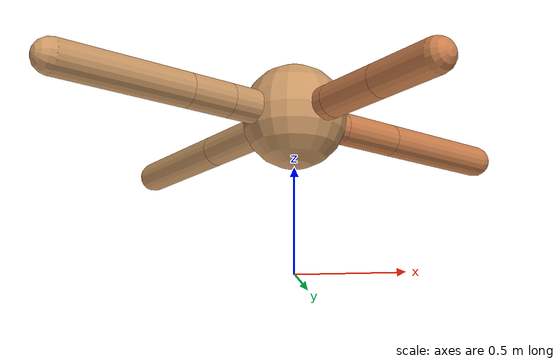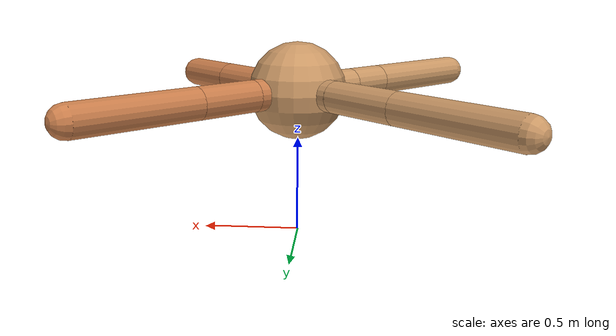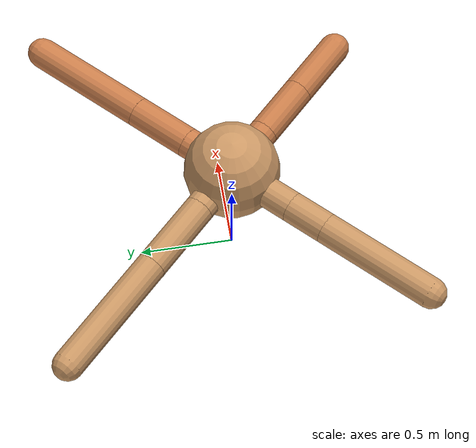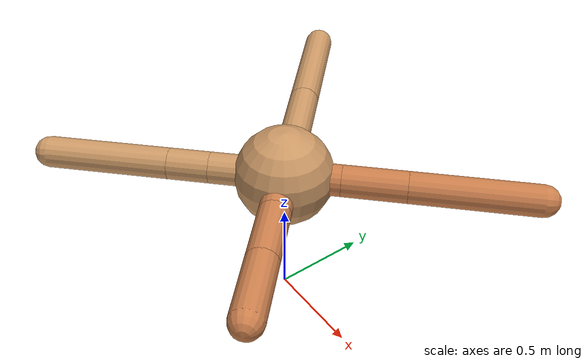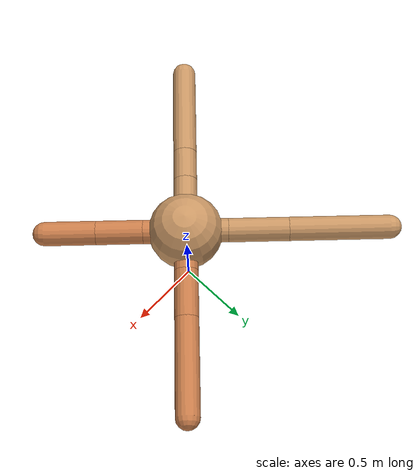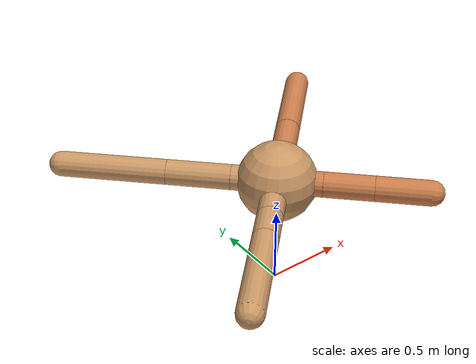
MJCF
<mujoco model="ant">
  <compiler angle="degree" coordinate="local" inertiafromgeom="true" />
  <option integrator="RK4" timestep="0.01" />
  <custom>
    <numeric data="0.0 0.0 0.55 1.0 0.0 0.0 0.0 0.0 1.0 0.0 -1.0 0.0 -1.0 0.0 1.0" name="init_qpos" />
  </custom>
  <default>
    <joint armature="1" damping="1" limited="true" />
    <geom conaffinity="0" condim="3" density="5.0" friction="1.5 0.1 0.1" margin="0.01" rgba="0.8 0.6 0.4 1" />
  </default>
  <worldbody>
    <body name="torso" pos="0 0 0.75">
      <geom name="torso_geom" pos="0 0 0" size="0.25" type="sphere" />

      <body name="front_left_leg" pos="0 0 0">
        <geom fromto="0.0 0.0 0.0 0.2 0.2 0.0" name="aux_1_geom" size="0.08" type="capsule" rgba=".8 .5 .3 1" />
        <body name="aux_1" pos="0.2 0.2 0.0">
          <joint axis="0 0 1" name="hip_1" pos="0.0 0.0 0.0" range="-40 40" type="hinge" />
          <geom fromto="0.0 0.0 0.0 0.2274658108971413 0.2274658108971413 0.0" name="left_leg_geom" size="0.08" type="capsule" rgba=".8 .5 .3 1" />
          <body pos="0.2274658108971413 0.2274658108971413 0.0" name="front_left_foot">
            <joint axis="-1 1 0" name="ankle_1" pos="0.0 0.0 0.0" range="30 100" type="hinge" />
            <geom fromto="0.0 0.0 0.0 0.45091310115718325 0.45091310115718325 0.0" name="left_ankle_geom" size="0.08" type="capsule" rgba=".8 .5 .3 1" />
          </body>
        </body>
      </body>
      <body name="front_right_leg" pos="0 0 0">
        <geom fromto="0.0 0.0 0.0 -0.2 0.2 0.0" name="aux_2_geom" size="0.08" type="capsule" />
        <body name="aux_2" pos="-0.2 0.2 0.0">
          <joint axis="0 0 1" name="hip_2" pos="0.0 0.0 0.0" range="-40 40" type="hinge" />
          <geom fromto="0.0 0.0 0.0 -0.28383679418508917 0.28383679418508917 0.0" name="right_leg_geom" size="0.08" type="capsule" />
          <body pos="-0.28383679418508917 0.28383679418508917 0.0" name="front_right_foot">
            <joint axis="1 1 0" name="ankle_2" pos="0.0 0.0 0.0" range="-100 -30" type="hinge" />
            <geom fromto="0.0 0.0 0.0 -0.4734744466543996 0.4734744466543996 0.0" name="right_ankle_geom" size="0.08" type="capsule" />
          </body>
        </body>
      </body>
      <body name="left_back_leg" pos="0 0 0">
        <geom fromto="0.0 0.0 0.0 -0.2643552348055786 -0.2643552348055786 0.0" name="aux_3_geom" size="0.08" type="capsule" />
        <body name="aux_3" pos="-0.2643552348055786 -0.2643552348055786 0.0">
          <joint axis="0 0 1" name="hip_3" pos="0.0 0.0 0.0" range="-40 40" type="hinge" />
          <geom fromto="0.0 0.0 0.0 -0.14877523236264342 -0.14877523236264342 0.0" name="back_leg_geom" size="0.08" type="capsule" />
          <body pos="-0.14877523236264342 -0.14877523236264342 0.0" name="left_back_foot">
            <joint axis="-1 1 0" name="ankle_3" pos="0.0 0.0 0.0" range="-100 -30" type="hinge" />
            <geom fromto="0.0 0.0 0.0 -0.44406883178164097 -0.44406883178164097 0.0" name="third_ankle_geom" size="0.08" type="capsule" />
          </body>
        </body>
      </body>
      <body name="right_back_leg" pos="0 0 0">
        <geom fromto="0.0 0.0 0.0 0.2 -0.2 0.0" name="aux_4_geom" size="0.08" type="capsule" rgba=".8 .5 .3 1" />
        <body name="aux_4" pos="0.2 -0.2 0.0">
          <joint axis="0 0 1" name="hip_4" pos="0.0 0.0 0.0" range="-40 40" type="hinge" />
          <geom fromto="0.0 0.0 0.0 0.21978092095634666 -0.21978092095634666 0.0" name="rightback_leg_geom" size="0.08" type="capsule" rgba=".8 .5 .3 1" />
          <body pos="0.21978092095634666 -0.21978092095634666 0.0" name="right_back_foot">
            <joint axis="1 1 0" name="ankle_4" pos="0.0 0.0 0.0" range="30 100" type="hinge" />
            <geom fromto="0.0 0.0 0.0 0.24087943953872806 -0.24087943953872806 0.0" name="fourth_ankle_geom" size="0.08" type="capsule" rgba=".8 .5 .3 1" />
          </body>
        </body>
      </body>
    </body>
  </worldbody>
  <actuator>
    <motor ctrllimited="true" ctrlrange="-1.0 1.0" joint="hip_4" gear="150" />
    <motor ctrllimited="true" ctrlrange="-1.0 1.0" joint="ankle_4" gear="150" />
    <motor ctrllimited="true" ctrlrange="-1.0 1.0" joint="hip_1" gear="150" />
    <motor ctrllimited="true" ctrlrange="-1.0 1.0" joint="ankle_1" gear="150" />
    <motor ctrllimited="true" ctrlrange="-1.0 1.0" joint="hip_2" gear="150" />
    <motor ctrllimited="true" ctrlrange="-1.0 1.0" joint="ankle_2" gear="150" />
    <motor ctrllimited="true" ctrlrange="-1.0 1.0" joint="hip_3" gear="150" />
    <motor ctrllimited="true" ctrlrange="-1.0 1.0" joint="ankle_3" gear="150" />
  </actuator>
</mujoco>
